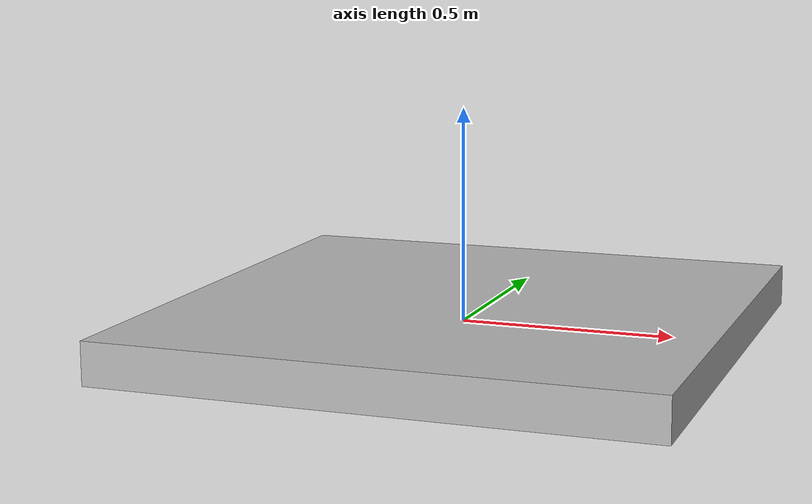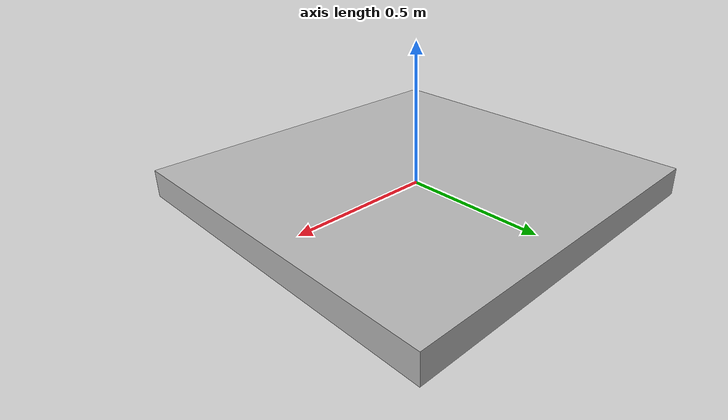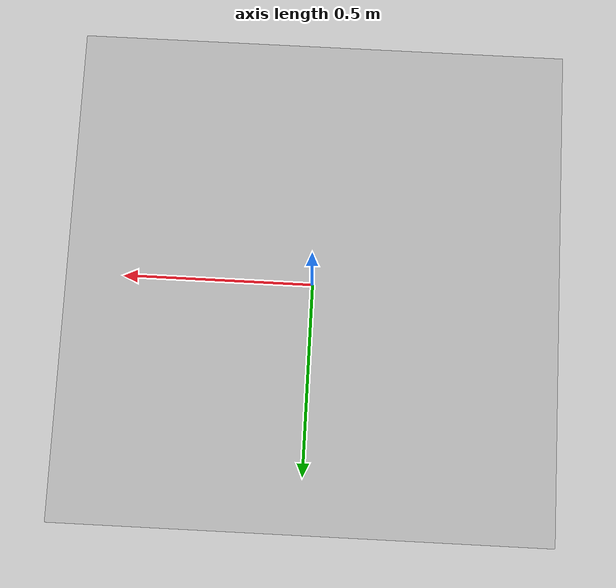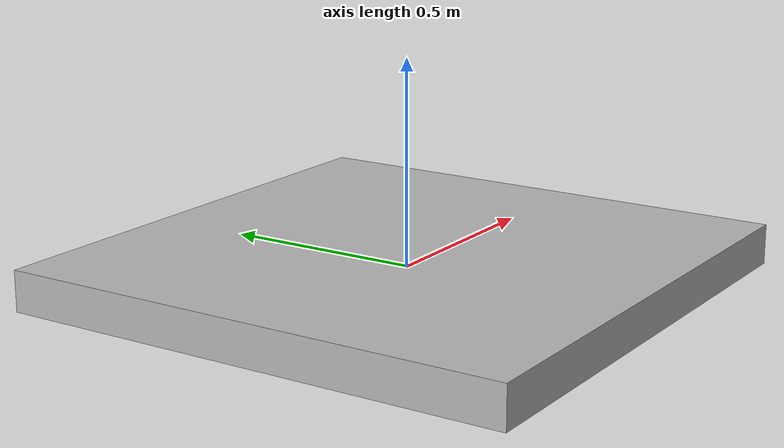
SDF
<?xml version="1.0"?>
<sdf version="1.6">
<model name="floor_walls_1">
  <static>true</static>
    <link name="link">
      <collision name="collision">
        <geometry>
          <box>
            <size>1.28 1.28 0.1</size>
          </box>
        </geometry>
        <surface>
          <friction>
            <ode>
              <mu>100</mu>
              <mu2>50</mu2>
            </ode>
          </friction>
        </surface>
      </collision>
      <visual name="visual">
        <cast_shadows>false</cast_shadows>
        <geometry>
          <box>
            <size>1.28 1.28 0.1</size>
          </box>
        </geometry>
        <material>
          <script>
            <uri>model://sgd_ground_plane/scripts</uri>
            <uri>model://sgd_ground_plane/materials/textures</uri>
            <name>FloorWalls1/Image</name>
          </script>
        </material>
      </visual>
    </link>
  </model>
</sdf>
